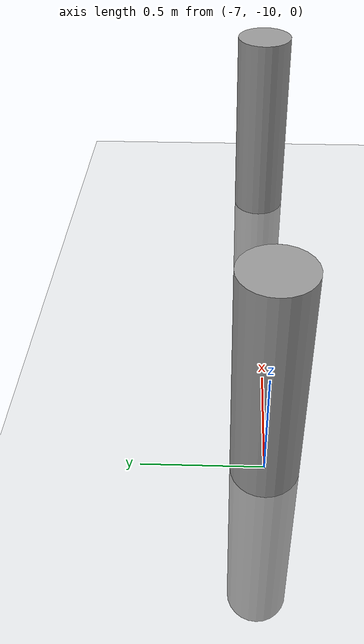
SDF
<sdf version="1.6">
 <world name="default">
  <model name="ground_plane">
   <static>1</static>
   <link name="link">
    <collision name="collision">
     <geometry><plane><normal>0 0 1</normal><size>100 100</size></plane></geometry>
     <surface><friction><ode><mu>100</mu><mu2>50</mu2></ode></friction></surface>
    </collision>
    <visual name="visual">
     <cast_shadows>0</cast_shadows>
     <geometry><plane><normal>0 0 1</normal><size>100 100</size></plane></geometry>
     <material>
      <script><uri>file://media/materials/scripts/gazebo.material</uri><name>Gazebo/Grey</name></script>
     </material>
    </visual>
   </link>
  </model>
  <model name="my_cylinder014_clone_21">
   <pose>-5 -10 0 0 -0 0</pose>
   <link name="my_cylinder014::link">
    <inertial>
     <mass>1</mass>
     <inertia><ixx>0.145833</ixx><ixy>0</ixy><ixz>0</ixz><iyy>0.145833</iyy><iyz>0</iyz><izz>0.125</izz></inertia>
    </inertial>
    <visual name="visual">
     <geometry><cylinder><radius>0.14</radius><length>2</length></cylinder></geometry>
     <material>
      <script><name>Gazebo/Grey</name><uri>file://media/materials/scripts/gazebo.material</uri></script>
      <ambient>0.3 0.3 0.3 1</ambient>
      <diffuse>0.7 0.7 0.7 1</diffuse>
      <specular>1 0.01 0.01 1</specular>
      <emissive>0 0 0 1</emissive>
      <shader type="vertex"><normal_map>__default__</normal_map></shader>
     </material>
    </visual>
    <collision name="collision">
     <geometry><cylinder><radius>0.14</radius><length>2</length></cylinder></geometry>
     <surface>
      <friction>
       <ode><mu>1</mu><mu2>1</mu2><fdir1>0 0 0</fdir1><slip1>0</slip1><slip2>0</slip2></ode>
       <torsional>
        <coefficient>1</coefficient>
        <patch_radius>0</patch_radius>
        <surface_radius>0</surface_radius>
        <use_patch_radius>1</use_patch_radius>
        <ode><slip>0</slip></ode>
       </torsional>
      </friction>
      <bounce><restitution_coefficient>0</restitution_coefficient><threshold>1e+06</threshold></bounce>
      <contact>
       <collide_without_contact>0</collide_without_contact>
       <collide_without_contact_bitmask>1</collide_without_contact_bitmask>
       <collide_bitmask>1</collide_bitmask>
       <ode>
        <soft_cfm>0</soft_cfm>
        <soft_erp>0.2</soft_erp>
        <kp>1e+13</kp>
        <kd>1</kd>
        <max_vel>0.01</max_vel>
        <min_depth>0</min_depth>
       </ode>
       <bullet>
        <split_impulse>1</split_impulse>
        <split_impulse_penetration_threshold>-0.01</split_impulse_penetration_threshold>
        <soft_cfm>0</soft_cfm>
        <soft_erp>0.2</soft_erp>
        <kp>1e+13</kp>
        <kd>1</kd>
       </bullet>
      </contact>
     </surface>
    </collision>
   </link>
   <static>1</static>
  </model>
  <model name="my_cylinder014_clone_20">
   <pose>-7 -10 0 0 -0 0</pose>
   <link name="my_cylinder014::link">
    <inertial>
     <mass>1</mass>
     <inertia><ixx>0.145833</ixx><ixy>0</ixy><ixz>0</ixz><iyy>0.145833</iyy><iyz>0</iyz><izz>0.125</izz></inertia>
    </inertial>
    <visual name="visual">
     <geometry><cylinder><radius>0.14</radius><length>2</length></cylinder></geometry>
     <material>
      <script><name>Gazebo/Grey</name><uri>file://media/materials/scripts/gazebo.material</uri></script>
      <ambient>0.3 0.3 0.3 1</ambient>
      <diffuse>0.7 0.7 0.7 1</diffuse>
      <specular>1 0.01 0.01 1</specular>
      <emissive>0 0 0 1</emissive>
      <shader type="vertex"><normal_map>__default__</normal_map></shader>
     </material>
    </visual>
    <collision name="collision">
     <geometry><cylinder><radius>0.14</radius><length>2</length></cylinder></geometry>
     <surface>
      <friction>
       <ode><mu>1</mu><mu2>1</mu2><fdir1>0 0 0</fdir1><slip1>0</slip1><slip2>0</slip2></ode>
       <torsional>
        <coefficient>1</coefficient>
        <patch_radius>0</patch_radius>
        <surface_radius>0</surface_radius>
        <use_patch_radius>1</use_patch_radius>
        <ode><slip>0</slip></ode>
       </torsional>
      </friction>
      <bounce><restitution_coefficient>0</restitution_coefficient><threshold>1e+06</threshold></bounce>
      <contact>
       <collide_without_contact>0</collide_without_contact>
       <collide_without_contact_bitmask>1</collide_without_contact_bitmask>
       <collide_bitmask>1</collide_bitmask>
       <ode>
        <soft_cfm>0</soft_cfm>
        <soft_erp>0.2</soft_erp>
        <kp>1e+13</kp>
        <kd>1</kd>
        <max_vel>0.01</max_vel>
        <min_depth>0</min_depth>
       </ode>
       <bullet>
        <split_impulse>1</split_impulse>
        <split_impulse_penetration_threshold>-0.01</split_impulse_penetration_threshold>
        <soft_cfm>0</soft_cfm>
        <soft_erp>0.2</soft_erp>
        <kp>1e+13</kp>
        <kd>1</kd>
       </bullet>
      </contact>
     </surface>
    </collision>
   </link>
   <static>1</static>
  </model>
  <model name="my_cylinder014_clone_20">
   <pose>-7 -10 0 0 -0 0</pose>
   <link name="my_cylinder014::link">
    <inertial>
     <mass>1</mass>
     <inertia><ixx>0.145833</ixx><ixy>0</ixy><ixz>0</ixz><iyy>0.145833</iyy><iyz>0</iyz><izz>0.125</izz></inertia>
    </inertial>
    <visual name="visual">
     <geometry><cylinder><radius>0.14</radius><length>2</length></cylinder></geometry>
     <material>
      <script><name>Gazebo/Grey</name><uri>file://media/materials/scripts/gazebo.material</uri></script>
      <ambient>0.3 0.3 0.3 1</ambient>
      <diffuse>0.7 0.7 0.7 1</diffuse>
      <specular>1 0.01 0.01 1</specular>
      <emissive>0 0 0 1</emissive>
      <shader type="vertex"><normal_map>__default__</normal_map></shader>
     </material>
    </visual>
    <collision name="collision">
     <geometry><cylinder><radius>0.14</radius><length>2</length></cylinder></geometry>
     <surface>
      <friction>
       <ode><mu>1</mu><mu2>1</mu2><fdir1>0 0 0</fdir1><slip1>0</slip1><slip2>0</slip2></ode>
       <torsional>
        <coefficient>1</coefficient>
        <patch_radius>0</patch_radius>
        <surface_radius>0</surface_radius>
        <use_patch_radius>1</use_patch_radius>
        <ode><slip>0</slip></ode>
       </torsional>
      </friction>
      <bounce><restitution_coefficient>0</restitution_coefficient><threshold>1e+06</threshold></bounce>
      <contact>
       <collide_without_contact>0</collide_without_contact>
       <collide_without_contact_bitmask>1</collide_without_contact_bitmask>
       <collide_bitmask>1</collide_bitmask>
       <ode>
        <soft_cfm>0</soft_cfm>
        <soft_erp>0.2</soft_erp>
        <kp>1e+13</kp>
        <kd>1</kd>
        <max_vel>0.01</max_vel>
        <min_depth>0</min_depth>
       </ode>
       <bullet>
        <split_impulse>1</split_impulse>
        <split_impulse_penetration_threshold>-0.01</split_impulse_penetration_threshold>
        <soft_cfm>0</soft_cfm>
        <soft_erp>0.2</soft_erp>
        <kp>1e+13</kp>
        <kd>1</kd>
       </bullet>
      </contact>
     </surface>
    </collision>
   </link>
   <static>1</static>
  </model>
 </world>
</sdf>
